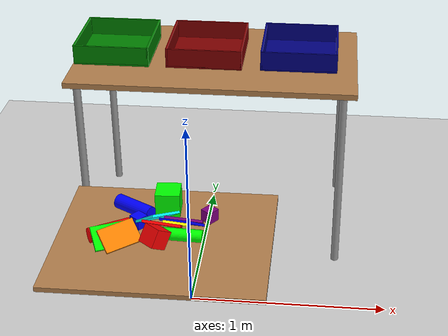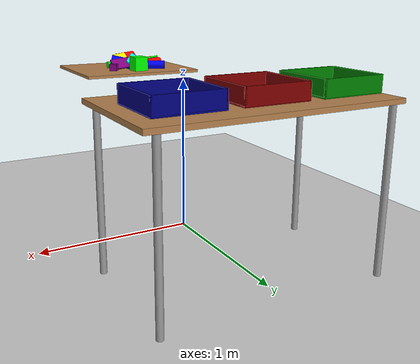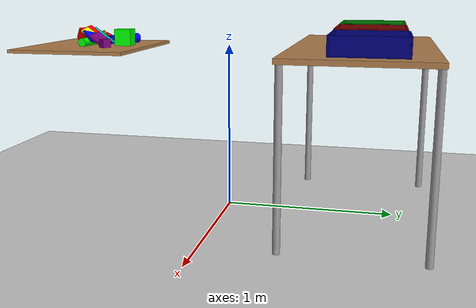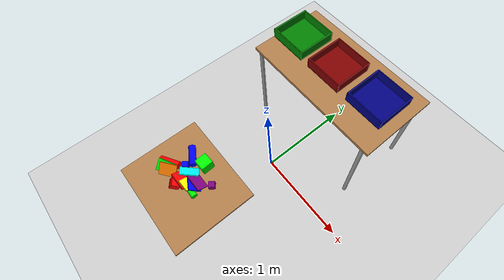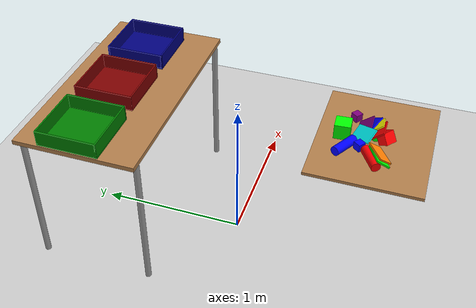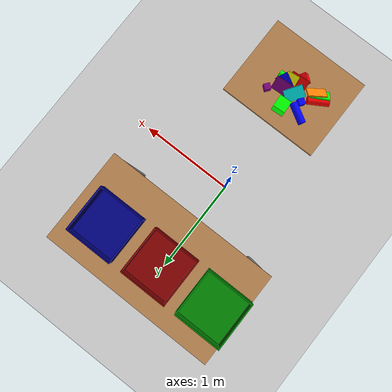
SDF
<sdf version="1.7">
 <world name="default">
  <light name="sun" type="directional">
   <pose>0 0 10 0 -0 0</pose>
   <diffuse>0.8 0.8 0.8 1</diffuse>
   <specular>0.2 0.2 0.2 1</specular>
   <attenuation>
    <range>1000</range>
    <constant>0.9</constant>
    <linear>0.01</linear>
    <quadratic>0.001</quadratic>
   </attenuation>
   <direction>-0.5 0.1 -0.9</direction>
   <spot><inner_angle>0</inner_angle><outer_angle>0</outer_angle><falloff>0</falloff></spot>
  </light>
  <model name="ground_plane">
   <static>1</static>
   <link name="link">
    <collision name="collision">
     <geometry><plane><normal>0 0 1</normal><size>100 100</size></plane></geometry>
     <surface><friction><ode><mu>100</mu><mu2>50</mu2></ode></friction></surface>
    </collision>
    <visual name="visual">
     <cast_shadows>0</cast_shadows>
     <geometry><plane><normal>0 0 1</normal><size>100 100</size></plane></geometry>
     <material>
      <script><uri>file://media/materials/scripts/gazebo.material</uri><name>Gazebo/Grey</name></script>
     </material>
    </visual>
   </link>
  </model>
  <gravity>0 0 -9.8</gravity>
  <magnetic_field>6e-06 2.3e-05 -4.2e-05</magnetic_field>
  <atmosphere type="adiabatic"/>
  <physics type="ode">
   <max_step_size>0.001</max_step_size>
   <real_time_factor>1</real_time_factor>
   <real_time_update_rate>1000</real_time_update_rate>
  </physics>
  <scene><ambient>0.4 0.4 0.4 1</ambient><background>0.7 0.7 0.7 1</background><shadows>1</shadows></scene>
  <audio><device>default</device></audio>
  <spherical_coordinates>
   <surface_model>EARTH_WGS84</surface_model>
   <latitude_deg>0</latitude_deg>
   <longitude_deg>0</longitude_deg>
   <elevation>0</elevation>
   <heading_deg>0</heading_deg>
  </spherical_coordinates>
  <model name="table">
   <static>1</static>
   <link name="link">
    <collision name="surface">
     <pose>0 0 1 0 -0 0</pose>
     <geometry><box><size>1.5 0.8 0.03</size></box></geometry>
     <surface>
      <friction><ode><mu>10</mu><mu2>5</mu2></ode></friction>
      <contact><ode><soft_cfm>0.0001</soft_cfm><soft_erp>0.4</soft_erp><kp>1e+06</kp><kd>10</kd></ode></contact>
     </surface>
    </collision>
    <visual name="visual1">
     <pose>0 0 1 0 -0 0</pose>
     <geometry><box><size>1.5 0.8 0.03</size></box></geometry>
     <material>
      <script><uri>file://media/materials/scripts/gazebo.material</uri><name>Gazebo/Wood</name></script>
     </material>
    </visual>
    <collision name="front_left_leg">
     <pose>0.68 0.38 0.5 0 -0 0</pose>
     <geometry><cylinder><radius>0.02</radius><length>1</length></cylinder></geometry>
    </collision>
    <visual name="front_left_leg">
     <pose>0.68 0.38 0.5 0 -0 0</pose>
     <geometry><cylinder><radius>0.02</radius><length>1</length></cylinder></geometry>
     <material>
      <script><uri>file://media/materials/scripts/gazebo.material</uri><name>Gazebo/Grey</name></script>
     </material>
    </visual>
    <collision name="front_right_leg">
     <pose>0.68 -0.38 0.5 0 -0 0</pose>
     <geometry><cylinder><radius>0.02</radius><length>1</length></cylinder></geometry>
    </collision>
    <visual name="front_right_leg">
     <pose>0.68 -0.38 0.5 0 -0 0</pose>
     <geometry><cylinder><radius>0.02</radius><length>1</length></cylinder></geometry>
     <material>
      <script><uri>file://media/materials/scripts/gazebo.material</uri><name>Gazebo/Grey</name></script>
     </material>
    </visual>
    <collision name="back_right_leg">
     <pose>-0.68 -0.38 0.5 0 -0 0</pose>
     <geometry><cylinder><radius>0.02</radius><length>1</length></cylinder></geometry>
    </collision>
    <visual name="back_right_leg">
     <pose>-0.68 -0.38 0.5 0 -0 0</pose>
     <geometry><cylinder><radius>0.02</radius><length>1</length></cylinder></geometry>
     <material>
      <script><uri>file://media/materials/scripts/gazebo.material</uri><name>Gazebo/Grey</name></script>
     </material>
    </visual>
    <collision name="back_left_leg">
     <pose>-0.68 0.38 0.5 0 -0 0</pose>
     <geometry><cylinder><radius>0.02</radius><length>1</length></cylinder></geometry>
    </collision>
    <visual name="back_left_leg">
     <pose>-0.68 0.38 0.5 0 -0 0</pose>
     <geometry><cylinder><radius>0.02</radius><length>1</length></cylinder></geometry>
     <material>
      <script><uri>file://media/materials/scripts/gazebo.material</uri><name>Gazebo/Grey</name></script>
     </material>
    </visual>
    <inertial>
     <inertia><ixx>1</ixx><ixy>0</ixy><ixz>0</ixz><iyy>1</iyy><iyz>0</iyz><izz>1</izz></inertia>
     <mass>50</mass>
    </inertial>
   </link>
   <pose>0.056083 0.801191 -1.2e-05 0 -0 2.5e-05</pose>
  </model>
  <plugin name="gazebo_link_attacher" filename="libgazebo_link_attacher.so"/>
  <plugin name="gazebo_ros_state" filename="libgazebo_ros_state.so">
   <namespace>/gazebo</namespace>
   <update_rate>100</update_rate>
  </plugin>
  <model name="cube_b">
   <link name="link_2">
    <inertial>
     <mass>2</mass>
     <inertia>
      <ixx>0.00083333</ixx>
      <ixy>0</ixy>
      <ixz>0</ixz>
      <iyy>0.00083333</iyy>
      <iyz>0</iyz>
      <izz>0.00083333</izz>
     </inertia>
    </inertial>
    <visual name="visual">
     <geometry><box><size>0.05 0.05 0.05</size></box></geometry>
     <material>
      <lighting>1</lighting>
      <script><uri>file://media/materials/scripts/gazebo.material</uri><name>Gazebo/Grey</name></script>
      <ambient>0 0 1 1</ambient>
      <diffuse>0 0 1 1</diffuse>
      <specular>0 0 0 1</specular>
      <emissive>0 0 0 1</emissive>
      <shader type="vertex"><normal_map>__default__</normal_map></shader>
     </material>
    </visual>
    <collision name="collision">
     <geometry><box><size>0.05 0.05 0.05</size></box></geometry>
     <surface>
      <friction>
       <ode><mu>0.8</mu><mu2>0.8</mu2><fdir1>0 0 0</fdir1><slip1>0</slip1><slip2>0</slip2></ode>
       <torsional>
        <coefficient>1</coefficient>
        <patch_radius>0</patch_radius>
        <surface_radius>0</surface_radius>
        <use_patch_radius>1</use_patch_radius>
        <ode><slip>0</slip></ode>
       </torsional>
      </friction>
      <bounce><restitution_coefficient>0</restitution_coefficient><threshold>1e+06</threshold></bounce>
      <contact>
       <collide_without_contact>0</collide_without_contact>
       <collide_without_contact_bitmask>1</collide_without_contact_bitmask>
       <collide_bitmask>1</collide_bitmask>
       <ode>
        <soft_cfm>0.0001</soft_cfm>
        <soft_erp>0.4</soft_erp>
        <kp>1e+06</kp>
        <kd>10</kd>
        <max_vel>0.01</max_vel>
        <min_depth>0</min_depth>
       </ode>
      </contact>
     </surface>
    </collision>
   </link>
   <static>0</static>
   <allow_auto_disable>0</allow_auto_disable>
   <pose>-0.072183 -0.784572 1.01036 -1.57403 0.003537 2.47932</pose>
  </model>
  <model name="cube_g">
   <link name="link_2">
    <inertial>
     <mass>2</mass>
     <inertia>
      <ixx>0.00333333</ixx>
      <iyy>0.00333333</iyy>
      <izz>0.00333333</izz>
      <ixy>0</ixy>
      <ixz>0</ixz>
      <iyz>0</iyz>
     </inertia>
    </inertial>
    <visual name="visual">
     <geometry><box><size>0.1 0.1 0.1</size></box></geometry>
     <material>
      <lighting>1</lighting>
      <script><uri>file://media/materials/scripts/gazebo.material</uri><name>Gazebo/Grey</name></script>
      <ambient>0 1 0 1</ambient>
      <diffuse>0 1 0 1</diffuse>
      <specular>0 0 0 1</specular>
      <emissive>0 0 0 1</emissive>
      <shader type="vertex"><normal_map>__default__</normal_map></shader>
     </material>
    </visual>
    <collision name="collision">
     <geometry><box><size>0.1 0.1 0.1</size></box></geometry>
     <surface>
      <friction>
       <ode><mu>0.8</mu><mu2>0.8</mu2><fdir1>0 0 0</fdir1><slip1>0</slip1><slip2>0</slip2></ode>
       <torsional>
        <coefficient>1</coefficient>
        <patch_radius>0</patch_radius>
        <surface_radius>0</surface_radius>
        <use_patch_radius>1</use_patch_radius>
        <ode><slip>0</slip></ode>
       </torsional>
      </friction>
      <bounce><restitution_coefficient>0</restitution_coefficient><threshold>1e+06</threshold></bounce>
      <contact>
       <collide_without_contact>0</collide_without_contact>
       <collide_without_contact_bitmask>1</collide_without_contact_bitmask>
       <collide_bitmask>1</collide_bitmask>
       <ode>
        <soft_cfm>0.0001</soft_cfm>
        <soft_erp>0.4</soft_erp>
        <kp>1e+06</kp>
        <kd>10</kd>
        <max_vel>0.01</max_vel>
        <min_depth>0</min_depth>
       </ode>
      </contact>
     </surface>
    </collision>
   </link>
   <static>0</static>
   <allow_auto_disable>0</allow_auto_disable>
   <pose>0.029324 -0.661435 1.03591 -2.93745 1.5665 0.263517</pose>
  </model>
  <model name="cube_r">
   <link name="link_2">
    <inertial>
     <mass>2</mass>
     <inertia>
      <ixx>0.001875</ixx>
      <ixy>0</ixy>
      <ixz>0</ixz>
      <iyy>0.001875</iyy>
      <iyz>0</iyz>
      <izz>0.001875</izz>
     </inertia>
    </inertial>
    <visual name="visual">
     <geometry><box><size>0.075 0.075 0.075</size></box></geometry>
     <material>
      <lighting>1</lighting>
      <script><uri>file://media/materials/scripts/gazebo.material</uri><name>Gazebo/Grey</name></script>
      <ambient>1 0 0 1</ambient>
      <diffuse>1 0 0 1</diffuse>
      <specular>0 0 0 1</specular>
      <emissive>0 0 0 1</emissive>
      <shader type="vertex"><normal_map>__default__</normal_map></shader>
     </material>
    </visual>
    <collision name="collision">
     <geometry><box><size>0.075 0.075 0.075</size></box></geometry>
     <surface>
      <friction>
       <ode><mu>0.8</mu><mu2>0.8</mu2><fdir1>0 0 0</fdir1><slip1>0</slip1><slip2>0</slip2></ode>
       <torsional>
        <coefficient>1</coefficient>
        <patch_radius>0</patch_radius>
        <surface_radius>0</surface_radius>
        <use_patch_radius>1</use_patch_radius>
        <ode><slip>0</slip></ode>
       </torsional>
      </friction>
      <bounce><restitution_coefficient>0</restitution_coefficient><threshold>1e+06</threshold></bounce>
      <contact>
       <collide_without_contact>0</collide_without_contact>
       <collide_without_contact_bitmask>1</collide_without_contact_bitmask>
       <collide_bitmask>1</collide_bitmask>
       <ode>
        <soft_cfm>0.0001</soft_cfm>
        <soft_erp>0.4</soft_erp>
        <kp>1e+06</kp>
        <kd>10</kd>
        <max_vel>0.01</max_vel>
        <min_depth>0</min_depth>
       </ode>
      </contact>
     </surface>
    </collision>
   </link>
   <static>0</static>
   <allow_auto_disable>0</allow_auto_disable>
   <pose>0.019017 -0.92623 1.03727 -0.004313 0.568319 0.890043</pose>
  </model>
  <model name="cylinder_r">
   <link name="link_0">
    <inertial>
     <mass>0.2</mass>
     <inertia>
      <ixx>0.0005267</ixx>
      <ixy>0</ixy>
      <ixz>0</ixz>
      <iyy>0.0005267</iyy>
      <iyz>0</iyz>
      <izz>9e-05</izz>
     </inertia>
    </inertial>
    <visual name="visual">
     <geometry><cylinder><radius>0.03</radius><length>0.17</length></cylinder></geometry>
     <material>
      <lighting>1</lighting>
      <script><uri>file://media/materials/scripts/gazebo.material</uri><name>Gazebo/Grey</name></script>
      <ambient>1 0 0 1</ambient>
      <diffuse>1 0 0 1</diffuse>
      <specular>0 0 0 1</specular>
      <emissive>0 0 0 1</emissive>
      <shader type="vertex"><normal_map>__default__</normal_map></shader>
     </material>
    </visual>
    <collision name="collision">
     <geometry><cylinder><radius>0.03</radius><length>0.17</length></cylinder></geometry>
     <surface>
      <friction>
       <ode><mu>0.5</mu><mu2>0.5</mu2><fdir1>0 0 0</fdir1><slip1>0</slip1><slip2>0</slip2></ode>
       <torsional>
        <coefficient>1</coefficient>
        <patch_radius>0</patch_radius>
        <surface_radius>0</surface_radius>
        <use_patch_radius>1</use_patch_radius>
        <ode><slip>0</slip></ode>
       </torsional>
      </friction>
      <bounce><restitution_coefficient>0</restitution_coefficient><threshold>1e+06</threshold></bounce>
      <contact>
       <collide_without_contact>0</collide_without_contact>
       <collide_without_contact_bitmask>1</collide_without_contact_bitmask>
       <collide_bitmask>1</collide_bitmask>
       <ode>
        <soft_cfm>0.0001</soft_cfm>
        <soft_erp>0.4</soft_erp>
        <kp>1e+06</kp>
        <kd>10</kd>
        <max_vel>0.01</max_vel>
        <min_depth>0</min_depth>
       </ode>
      </contact>
     </surface>
    </collision>
   </link>
   <static>0</static>
   <allow_auto_disable>0</allow_auto_disable>
   <pose>-0.171754 -0.867678 1.01484 1.57556 -0.516207 -1.03045</pose>
  </model>
  <model name="cylinder_b">
   <link name="link_0">
    <inertial>
     <mass>0.2</mass>
     <inertia>
      <ixx>0.0005267</ixx>
      <ixy>0</ixy>
      <ixz>0</ixz>
      <iyy>0.0005267</iyy>
      <iyz>0</iyz>
      <izz>9e-05</izz>
     </inertia>
    </inertial>
    <visual name="visual">
     <geometry><cylinder><radius>0.03</radius><length>0.17</length></cylinder></geometry>
     <material>
      <lighting>1</lighting>
      <ambient>0 0 1 1</ambient>
      <diffuse>0 0 1 1</diffuse>
      <specular>0.1 0.1 0.1 1</specular>
      <emissive>0 0 0 1</emissive>
      <shader type="vertex"><normal_map>__default__</normal_map></shader>
     </material>
    </visual>
    <collision name="collision">
     <geometry><cylinder><radius>0.03</radius><length>0.17</length></cylinder></geometry>
     <surface>
      <friction>
       <ode><mu>0.4</mu><mu2>0.4</mu2><fdir1>0 0 0</fdir1><slip1>0</slip1><slip2>0</slip2></ode>
       <torsional>
        <coefficient>1</coefficient>
        <patch_radius>0</patch_radius>
        <surface_radius>0</surface_radius>
        <use_patch_radius>1</use_patch_radius>
        <ode><slip>0</slip></ode>
       </torsional>
      </friction>
      <bounce><restitution_coefficient>0</restitution_coefficient><threshold>1e+06</threshold></bounce>
      <contact>
       <collide_without_contact>0</collide_without_contact>
       <collide_without_contact_bitmask>1</collide_without_contact_bitmask>
       <collide_bitmask>1</collide_bitmask>
       <ode>
        <soft_cfm>0.0001</soft_cfm>
        <soft_erp>0.4</soft_erp>
        <kp>1e+06</kp>
        <kd>10</kd>
        <max_vel>0.01</max_vel>
        <min_depth>0</min_depth>
       </ode>
      </contact>
     </surface>
    </collision>
   </link>
   <static>0</static>
   <allow_auto_disable>0</allow_auto_disable>
   <pose>-0.104074 -0.698943 1.01532 1.57499 0.764038 -2.09176</pose>
  </model>
  <model name="cylinder_g">
   <link name="link_0">
    <inertial>
     <mass>0.2</mass>
     <inertia>
      <ixx>0.0005129</ixx>
      <ixy>0</ixy>
      <ixz>0</ixz>
      <iyy>0.0005129</iyy>
      <iyz>0</iyz>
      <izz>6.25e-05</izz>
     </inertia>
    </inertial>
    <visual name="visual">
     <geometry><cylinder><radius>0.025</radius><length>0.17</length></cylinder></geometry>
     <material>
      <lighting>1</lighting>
      <ambient>0 1 0 1</ambient>
      <diffuse>0 1 0 1</diffuse>
      <specular>0.1 0.1 0.1 1</specular>
      <emissive>0 0 0 1</emissive>
      <shader type="vertex"><normal_map>__default__</normal_map></shader>
     </material>
    </visual>
    <collision name="collision">
     <geometry><cylinder><radius>0.025</radius><length>0.17</length></cylinder></geometry>
     <surface>
      <friction>
       <ode><mu>0.5</mu><mu2>0.5</mu2><fdir1>0 0 0</fdir1><slip1>0</slip1><slip2>0</slip2></ode>
       <torsional>
        <coefficient>1</coefficient>
        <patch_radius>0</patch_radius>
        <surface_radius>0</surface_radius>
        <use_patch_radius>1</use_patch_radius>
        <ode><slip>0</slip></ode>
       </torsional>
      </friction>
      <bounce><restitution_coefficient>0</restitution_coefficient><threshold>1e+06</threshold></bounce>
      <contact>
       <collide_without_contact>0</collide_without_contact>
       <collide_without_contact_bitmask>1</collide_without_contact_bitmask>
       <collide_bitmask>1</collide_bitmask>
       <ode>
        <soft_cfm>0.0001</soft_cfm>
        <soft_erp>0.4</soft_erp>
        <kp>1e+06</kp>
        <kd>10</kd>
        <max_vel>0.01</max_vel>
        <min_depth>0</min_depth>
       </ode>
      </contact>
     </surface>
    </collision>
   </link>
   <static>0</static>
   <allow_auto_disable>0</allow_auto_disable>
   <pose>0.110375 -0.867352 1.011 -1.55923 -1.19955 -1.63329</pose>
  </model>
  <model name="cuboid_r">
   <link name="link">
    <inertial>
     <mass>2</mass>
     <inertia>
      <ixx>0.001683</ixx>
      <iyy>0.003767</iyy>
      <izz>0.005417</izz>
      <ixy>0</ixy>
      <ixz>0</ixz>
      <iyz>0</iyz>
     </inertia>
    </inertial>
    <visual name="visual">
     <geometry><box><size>0.15 0.1 0.01</size></box></geometry>
     <material><ambient>1 0 0 1</ambient><diffuse>1 0 0 1</diffuse><specular>0.1 0.1 0.1 1</specular></material>
    </visual>
    <collision name="collision">
     <geometry><box><size>0.15 0.1 0.01</size></box></geometry>
     <surface>
      <friction>
       <ode><mu>0.6</mu><mu2>0.6</mu2><fdir1>0 0 0</fdir1><slip1>0</slip1><slip2>0</slip2></ode>
       <torsional>
        <coefficient>1</coefficient>
        <patch_radius>0</patch_radius>
        <surface_radius>0</surface_radius>
        <use_patch_radius>1</use_patch_radius>
        <ode><slip>0</slip></ode>
       </torsional>
      </friction>
      <bounce><restitution_coefficient>0</restitution_coefficient><threshold>1e+06</threshold></bounce>
      <contact>
       <collide_without_contact>0</collide_without_contact>
       <collide_without_contact_bitmask>1</collide_without_contact_bitmask>
       <collide_bitmask>1</collide_bitmask>
       <ode>
        <soft_cfm>0.0001</soft_cfm>
        <soft_erp>0.4</soft_erp>
        <kp>1e+06</kp>
        <kd>10</kd>
        <max_vel>0.01</max_vel>
        <min_depth>0</min_depth>
       </ode>
      </contact>
     </surface>
    </collision>
   </link>
   <static>0</static>
   <allow_auto_disable>0</allow_auto_disable>
   <pose>0.03925 -0.873665 1.0608 0.641202 -0.111187 -3.13385</pose>
  </model>
  <model name="cuboid_g">
   <link name="link">
    <inertial>
     <mass>2</mass>
     <inertia>
      <ixx>0.001683</ixx>
      <iyy>0.003767</iyy>
      <izz>0.005417</izz>
      <ixy>0</ixy>
      <ixz>0</ixz>
      <iyz>0</iyz>
     </inertia>
    </inertial>
    <visual name="visual">
     <geometry><box><size>0.15 0.1 0.01</size></box></geometry>
     <material><ambient>0 1 0 1</ambient><diffuse>0 1 0 1</diffuse><specular>0.1 0.1 0.1 1</specular></material>
    </visual>
    <collision name="collision">
     <geometry><box><size>0.15 0.1 0.01</size></box></geometry>
     <surface>
      <friction>
       <ode><mu>0.6</mu><mu2>0.6</mu2><fdir1>0 0 0</fdir1><slip1>0</slip1><slip2>0</slip2></ode>
       <torsional>
        <coefficient>1</coefficient>
        <patch_radius>0</patch_radius>
        <surface_radius>0</surface_radius>
        <use_patch_radius>1</use_patch_radius>
        <ode><slip>0</slip></ode>
       </torsional>
      </friction>
      <bounce><restitution_coefficient>0</restitution_coefficient><threshold>1e+06</threshold></bounce>
      <contact>
       <collide_without_contact>0</collide_without_contact>
       <collide_without_contact_bitmask>1</collide_without_contact_bitmask>
       <collide_bitmask>1</collide_bitmask>
       <ode>
        <soft_cfm>0.0001</soft_cfm>
        <soft_erp>0.4</soft_erp>
        <kp>1e+06</kp>
        <kd>10</kd>
        <max_vel>0.01</max_vel>
        <min_depth>0</min_depth>
       </ode>
      </contact>
     </surface>
    </collision>
   </link>
   <static>0</static>
   <allow_auto_disable>0</allow_auto_disable>
   <pose>-0.154063 -0.914801 1.02169 -2.50509 0.036951 0.487499</pose>
  </model>
  <model name="cuboid_b">
   <link name="link">
    <inertial>
     <mass>2</mass>
     <inertia>
      <ixx>0.001683</ixx>
      <iyy>0.003767</iyy>
      <izz>0.005417</izz>
      <ixy>0</ixy>
      <ixz>0</ixz>
      <iyz>0</iyz>
     </inertia>
    </inertial>
    <visual name="visual">
     <geometry><box><size>0.15 0.1 0.01</size></box></geometry>
     <material><ambient>0 0 1 1</ambient><diffuse>0 0 1 1</diffuse><specular>0.1 0.1 0.1 1</specular></material>
    </visual>
    <collision name="collision">
     <geometry><box><size>0.15 0.1 0.01</size></box></geometry>
     <surface>
      <friction>
       <ode><mu>0.6</mu><mu2>0.6</mu2><fdir1>0 0 0</fdir1><slip1>0</slip1><slip2>0</slip2></ode>
       <torsional>
        <coefficient>1</coefficient>
        <patch_radius>0</patch_radius>
        <surface_radius>0</surface_radius>
        <use_patch_radius>1</use_patch_radius>
        <ode><slip>0</slip></ode>
       </torsional>
      </friction>
      <bounce><restitution_coefficient>0</restitution_coefficient><threshold>1e+06</threshold></bounce>
      <contact>
       <collide_without_contact>0</collide_without_contact>
       <collide_without_contact_bitmask>1</collide_without_contact_bitmask>
       <collide_bitmask>1</collide_bitmask>
       <ode>
        <soft_cfm>0.0001</soft_cfm>
        <soft_erp>0.4</soft_erp>
        <kp>1e+06</kp>
        <kd>10</kd>
        <max_vel>0.01</max_vel>
        <min_depth>0</min_depth>
       </ode>
      </contact>
     </surface>
    </collision>
   </link>
   <static>0</static>
   <allow_auto_disable>0</allow_auto_disable>
   <pose>0.106216 -0.815077 1.03442 0.616599 0.218701 2.70549</pose>
  </model>
  <model name="cuboid_purple">
   <link name="link">
    <inertial>
     <mass>2</mass>
     <inertia>
      <ixx>0.001683</ixx>
      <iyy>0.003767</iyy>
      <izz>0.005417</izz>
      <ixy>0</ixy>
      <ixz>0</ixz>
      <iyz>0</iyz>
     </inertia>
    </inertial>
    <visual name="visual">
     <geometry><box><size>0.15 0.1 0.01</size></box></geometry>
     <material>
      <ambient>0.5 0 0.5 1</ambient>
      <diffuse>0.5 0 0.5 1</diffuse>
      <specular>0.1 0.1 0.1 1</specular>
     </material>
    </visual>
    <collision name="collision">
     <geometry><box><size>0.15 0.1 0.01</size></box></geometry>
     <surface>
      <friction>
       <ode><mu>0.6</mu><mu2>0.6</mu2><fdir1>0 0 0</fdir1><slip1>0</slip1><slip2>0</slip2></ode>
       <torsional>
        <coefficient>1</coefficient>
        <patch_radius>0</patch_radius>
        <surface_radius>0</surface_radius>
        <use_patch_radius>1</use_patch_radius>
        <ode><slip>0</slip></ode>
       </torsional>
      </friction>
      <bounce><restitution_coefficient>0</restitution_coefficient><threshold>1e+06</threshold></bounce>
      <contact>
       <collide_without_contact>0</collide_without_contact>
       <collide_without_contact_bitmask>1</collide_without_contact_bitmask>
       <collide_bitmask>1</collide_bitmask>
       <ode>
        <soft_cfm>0.0001</soft_cfm>
        <soft_erp>0.4</soft_erp>
        <kp>1e+06</kp>
        <kd>10</kd>
        <max_vel>0.01</max_vel>
        <min_depth>0</min_depth>
       </ode>
      </contact>
     </surface>
    </collision>
   </link>
   <static>0</static>
   <allow_auto_disable>0</allow_auto_disable>
   <pose>0.111272 -0.788103 1.02756 0.639957 -0.099359 -3.12261</pose>
  </model>
  <model name="cuboid_orange">
   <link name="link">
    <inertial>
     <mass>2</mass>
     <inertia>
      <ixx>0.001683</ixx>
      <iyy>0.003767</iyy>
      <izz>0.005417</izz>
      <ixy>0</ixy>
      <ixz>0</ixz>
      <iyz>0</iyz>
     </inertia>
    </inertial>
    <visual name="visual">
     <geometry><box><size>0.15 0.1 0.01</size></box></geometry>
     <material>
      <ambient>1 0.5 0 1</ambient>
      <diffuse>1 0.5 0 1</diffuse>
      <specular>0.1 0.1 0.1 1</specular>
     </material>
    </visual>
    <collision name="collision">
     <geometry><box><size>0.15 0.1 0.01</size></box></geometry>
     <surface>
      <friction>
       <ode><mu>0.6</mu><mu2>0.6</mu2><fdir1>0 0 0</fdir1><slip1>0</slip1><slip2>0</slip2></ode>
       <torsional>
        <coefficient>1</coefficient>
        <patch_radius>0</patch_radius>
        <surface_radius>0</surface_radius>
        <use_patch_radius>1</use_patch_radius>
        <ode><slip>0</slip></ode>
       </torsional>
      </friction>
      <bounce><restitution_coefficient>0</restitution_coefficient><threshold>1e+06</threshold></bounce>
      <contact>
       <collide_without_contact>0</collide_without_contact>
       <collide_without_contact_bitmask>1</collide_without_contact_bitmask>
       <collide_bitmask>1</collide_bitmask>
       <ode>
        <soft_cfm>0.0001</soft_cfm>
        <soft_erp>0.4</soft_erp>
        <kp>1e+06</kp>
        <kd>10</kd>
        <max_vel>0.01</max_vel>
        <min_depth>0</min_depth>
       </ode>
      </contact>
     </surface>
    </collision>
   </link>
   <static>0</static>
   <allow_auto_disable>0</allow_auto_disable>
   <pose>-0.122471 -0.913708 1.02297 2.50678 0.061456 -2.51697</pose>
  </model>
  <model name="cuboid_yellow">
   <link name="link">
    <inertial>
     <mass>2</mass>
     <inertia>
      <ixx>0.001683</ixx>
      <iyy>0.003767</iyy>
      <izz>0.005417</izz>
      <ixy>0</ixy>
      <ixz>0</ixz>
      <iyz>0</iyz>
     </inertia>
    </inertial>
    <visual name="visual">
     <geometry><box><size>0.15 0.1 0.01</size></box></geometry>
     <material><ambient>1 1 0 1</ambient><diffuse>1 1 0 1</diffuse><specular>0.1 0.1 0.1 1</specular></material>
    </visual>
    <collision name="collision">
     <geometry><box><size>0.15 0.1 0.01</size></box></geometry>
     <surface>
      <friction>
       <ode><mu>0.6</mu><mu2>0.6</mu2><fdir1>0 0 0</fdir1><slip1>0</slip1><slip2>0</slip2></ode>
       <torsional>
        <coefficient>1</coefficient>
        <patch_radius>0</patch_radius>
        <surface_radius>0</surface_radius>
        <use_patch_radius>1</use_patch_radius>
        <ode><slip>0</slip></ode>
       </torsional>
      </friction>
      <bounce><restitution_coefficient>0</restitution_coefficient><threshold>1e+06</threshold></bounce>
      <contact>
       <collide_without_contact>0</collide_without_contact>
       <collide_without_contact_bitmask>1</collide_without_contact_bitmask>
       <collide_bitmask>1</collide_bitmask>
       <ode>
        <soft_cfm>0.0001</soft_cfm>
        <soft_erp>0.4</soft_erp>
        <kp>1e+06</kp>
        <kd>10</kd>
        <max_vel>0.01</max_vel>
        <min_depth>0</min_depth>
       </ode>
      </contact>
     </surface>
    </collision>
   </link>
   <static>0</static>
   <allow_auto_disable>0</allow_auto_disable>
   <pose>0.087596 -0.83792 1.04116 0.1673 0.631662 1.71022</pose>
  </model>
  <model name="cuboid_cyan">
   <link name="link">
    <inertial>
     <mass>2</mass>
     <inertia>
      <ixx>0.001683</ixx>
      <iyy>0.003767</iyy>
      <izz>0.005417</izz>
      <ixy>0</ixy>
      <ixz>0</ixz>
      <iyz>0</iyz>
     </inertia>
    </inertial>
    <visual name="visual">
     <geometry><box><size>0.15 0.1 0.01</size></box></geometry>
     <material><ambient>0 1 1 1</ambient><diffuse>0 1 1 1</diffuse><specular>0.1 0.1 0.1 1</specular></material>
    </visual>
    <collision name="collision">
     <geometry><box><size>0.15 0.1 0.01</size></box></geometry>
     <surface>
      <friction>
       <ode><mu>0.6</mu><mu2>0.6</mu2><fdir1>0 0 0</fdir1><slip1>0</slip1><slip2>0</slip2></ode>
       <torsional>
        <coefficient>1</coefficient>
        <patch_radius>0</patch_radius>
        <surface_radius>0</surface_radius>
        <use_patch_radius>1</use_patch_radius>
        <ode><slip>0</slip></ode>
       </torsional>
      </friction>
      <bounce><restitution_coefficient>0</restitution_coefficient><threshold>1e+06</threshold></bounce>
      <contact>
       <collide_without_contact>0</collide_without_contact>
       <collide_without_contact_bitmask>1</collide_without_contact_bitmask>
       <collide_bitmask>1</collide_bitmask>
       <ode>
        <soft_cfm>0.0001</soft_cfm>
        <soft_erp>0.4</soft_erp>
        <kp>1e+06</kp>
        <kd>10</kd>
        <max_vel>0.01</max_vel>
        <min_depth>0</min_depth>
       </ode>
      </contact>
     </surface>
    </collision>
   </link>
   <static>0</static>
   <allow_auto_disable>0</allow_auto_disable>
   <pose>0.007605 -0.794484 1.04031 -0.600706 0.323253 0.907236</pose>
  </model>
  <model name="workspace">
   <link name="link">
    <inertial>
     <mass>100</mass>
     <inertia><ixx>6.02417</ixx><ixy>0</ixy><ixz>0</ixz><iyy>4.08667</iyy><iyz>0</iyz><izz>10.1042</izz></inertia>
    </inertial>
    <visual name="visual">
     <geometry><box><size>0.7 0.85 0.02</size></box></geometry>
     <material>
      <script><name>Gazebo/Wood</name><uri>file://media/materials/scripts/gazebo.material</uri></script>
      <shader type="pixel"/>
     </material>
    </visual>
    <collision name="collision">
     <geometry><box><size>0.7 0.85 0.02</size></box></geometry>
     <surface>
      <friction>
       <ode><mu>100</mu><mu2>50</mu2><fdir1>0 0 0</fdir1><slip1>0</slip1><slip2>0</slip2></ode>
       <torsional>
        <coefficient>1</coefficient>
        <patch_radius>0</patch_radius>
        <surface_radius>0</surface_radius>
        <use_patch_radius>1</use_patch_radius>
        <ode><slip>0</slip></ode>
       </torsional>
      </friction>
      <bounce><restitution_coefficient>0</restitution_coefficient><threshold>1e+06</threshold></bounce>
      <contact>
       <collide_without_contact>0</collide_without_contact>
       <collide_without_contact_bitmask>1</collide_without_contact_bitmask>
       <collide_bitmask>1</collide_bitmask>
       <ode>
        <soft_cfm>0.0001</soft_cfm>
        <soft_erp>0.2</soft_erp>
        <kp>1e+13</kp>
        <kd>10</kd>
        <max_vel>0.01</max_vel>
        <min_depth>0</min_depth>
       </ode>
       <bullet>
        <split_impulse>1</split_impulse>
        <split_impulse_penetration_threshold>-0.01</split_impulse_penetration_threshold>
        <soft_cfm>0</soft_cfm>
        <soft_erp>0.2</soft_erp>
        <kp>1e+13</kp>
        <kd>1</kd>
       </bullet>
      </contact>
     </surface>
    </collision>
   </link>
   <static>1</static>
   <pose>0.0416 -0.859914 0.975746 -0.004154 -0.001127 1.57039</pose>
  </model>
  <model name="tray_red">
   <static>1</static>
   <link name="link">
    <collision name="base_collision">
     <pose>0 0 0.01 0 -0 0</pose>
     <geometry><box><size>0.4 0.4 0.01</size></box></geometry>
     <surface><contact><ode><mu>50</mu><mu2>50</mu2></ode></contact></surface>
    </collision>
    <visual name="base_visual">
     <pose>0 0 0.01 0 -0 0</pose>
     <geometry><box><size>0.4 0.4 0.01</size></box></geometry>
     <material>
      <ambient>1 0 0 1</ambient>
      <diffuse>0.5 0 0 1</diffuse>
      <specular>0 0 0 1</specular>
      <emissive>0 0 0 1</emissive>
      <shininess>100</shininess>
     </material>
    </visual>
    <collision name="front_collision">
     <pose>0 0.195 0.06 0 -0 0</pose>
     <geometry><box><size>0.4 0.01 0.1</size></box></geometry>
    </collision>
    <visual name="front_visual">
     <pose>0 0.195 0.06 0 -0 0</pose>
     <geometry><box><size>0.4 0.01 0.1</size></box></geometry>
     <material>
      <ambient>1 0 0 1</ambient>
      <diffuse>0.5 0 0 1</diffuse>
      <specular>0 0 0 1</specular>
      <emissive>0 0 0 1</emissive>
     </material>
    </visual>
    <collision name="back_collision">
     <pose>0 -0.195 0.06 0 -0 0</pose>
     <geometry><box><size>0.4 0.01 0.1</size></box></geometry>
    </collision>
    <visual name="back_visual">
     <pose>0 -0.195 0.06 0 -0 0</pose>
     <geometry><box><size>0.4 0.01 0.1</size></box></geometry>
     <material>
      <ambient>1 0 0 1</ambient>
      <diffuse>0.5 0 0 1</diffuse>
      <specular>0 0 0 1</specular>
      <emissive>0 0 0 1</emissive>
     </material>
    </visual>
    <collision name="left_collision">
     <pose>0.195 0 0.06 0 -0 0</pose>
     <geometry><box><size>0.01 0.4 0.1</size></box></geometry>
    </collision>
    <visual name="left_visual">
     <pose>0.195 0 0.06 0 -0 0</pose>
     <geometry><box><size>0.01 0.4 0.1</size></box></geometry>
     <material>
      <ambient>1 0 0 1</ambient>
      <diffuse>0.5 0 0 1</diffuse>
      <specular>0 0 0 1</specular>
      <emissive>0 0 0 1</emissive>
     </material>
    </visual>
    <collision name="right_collision">
     <pose>-0.195 0 0.06 0 -0 0</pose>
     <geometry><box><size>0.01 0.4 0.1</size></box></geometry>
    </collision>
    <visual name="right_visual">
     <pose>-0.195 0 0.06 0 -0 0</pose>
     <geometry><box><size>0.01 0.4 0.1</size></box></geometry>
     <material>
      <ambient>1 0 0 1</ambient>
      <diffuse>0.5 0 0 1</diffuse>
      <specular>0 0 0 1</specular>
      <emissive>0 0 0 1</emissive>
     </material>
    </visual>
    <inertial>
     <inertia><ixx>1</ixx><ixy>0</ixy><ixz>0</ixz><iyy>1</iyy><iyz>0</iyz><izz>1</izz></inertia>
     <mass>1</mass>
    </inertial>
   </link>
   <pose>0.003367 0.836815 1.00999 0 -0 0</pose>
  </model>
  <model name="tray_green">
   <static>1</static>
   <link name="link">
    <collision name="base_collision">
     <pose>0 0 0.01 0 -0 0</pose>
     <geometry><box><size>0.4 0.4 0.01</size></box></geometry>
     <surface><contact><ode><mu>50</mu><mu2>50</mu2></ode></contact></surface>
    </collision>
    <visual name="base_visual">
     <pose>0 0 0.01 0 -0 0</pose>
     <geometry><box><size>0.4 0.4 0.01</size></box></geometry>
     <material><ambient>0 1 0 1</ambient><diffuse>0 0.5 0 1</diffuse></material>
    </visual>
    <collision name="front_collision">
     <pose>0 0.195 0.06 0 -0 0</pose>
     <geometry><box><size>0.4 0.01 0.1</size></box></geometry>
    </collision>
    <visual name="front_visual">
     <pose>0 0.195 0.06 0 -0 0</pose>
     <geometry><box><size>0.4 0.01 0.1</size></box></geometry>
     <material><ambient>0 1 0 1</ambient><diffuse>0 0.5 0 1</diffuse></material>
    </visual>
    <collision name="back_collision">
     <pose>0 -0.195 0.06 0 -0 0</pose>
     <geometry><box><size>0.4 0.01 0.1</size></box></geometry>
    </collision>
    <visual name="back_visual">
     <pose>0 -0.195 0.06 0 -0 0</pose>
     <geometry><box><size>0.4 0.01 0.1</size></box></geometry>
     <material><ambient>0 1 0 1</ambient><diffuse>0 0.5 0 1</diffuse></material>
    </visual>
    <collision name="left_collision">
     <pose>0.195 0 0.06 0 -0 0</pose>
     <geometry><box><size>0.01 0.4 0.1</size></box></geometry>
    </collision>
    <visual name="left_visual">
     <pose>0.195 0 0.06 0 -0 0</pose>
     <geometry><box><size>0.01 0.4 0.1</size></box></geometry>
     <material><ambient>0 1 0 1</ambient><diffuse>0 0.5 0 1</diffuse></material>
    </visual>
    <collision name="right_collision">
     <pose>-0.195 0 0.06 0 -0 0</pose>
     <geometry><box><size>0.01 0.4 0.1</size></box></geometry>
    </collision>
    <visual name="right_visual">
     <pose>-0.195 0 0.06 0 -0 0</pose>
     <geometry><box><size>0.01 0.4 0.1</size></box></geometry>
     <material><ambient>0 1 0 1</ambient><diffuse>0 0.5 0 1</diffuse></material>
    </visual>
    <inertial>
     <inertia><ixx>1</ixx><ixy>0</ixy><ixz>0</ixz><iyy>1</iyy><iyz>0</iyz><izz>1</izz></inertia>
     <mass>1</mass>
    </inertial>
   </link>
   <pose>-0.487214 0.834657 1.00999 0 -0 0</pose>
  </model>
  <model name="tray_blue">
   <static>1</static>
   <link name="link">
    <collision name="base_collision">
     <pose>0 0 0.01 0 -0 0</pose>
     <geometry><box><size>0.4 0.4 0.01</size></box></geometry>
     <surface><contact><ode><mu>50</mu><mu2>50</mu2></ode></contact></surface>
    </collision>
    <visual name="base_visual">
     <pose>0 0 0.01 0 -0 0</pose>
     <geometry><box><size>0.4 0.4 0.01</size></box></geometry>
     <material><ambient>0 0 1 1</ambient><diffuse>0 0 0.5 1</diffuse></material>
    </visual>
    <collision name="front_collision">
     <pose>0 0.195 0.06 0 -0 0</pose>
     <geometry><box><size>0.4 0.01 0.1</size></box></geometry>
    </collision>
    <visual name="front_visual">
     <pose>0 0.195 0.06 0 -0 0</pose>
     <geometry><box><size>0.4 0.01 0.1</size></box></geometry>
     <material><ambient>0 0 1 1</ambient><diffuse>0 0 0.5 1</diffuse></material>
    </visual>
    <collision name="back_collision">
     <pose>0 -0.195 0.06 0 -0 0</pose>
     <geometry><box><size>0.4 0.01 0.1</size></box></geometry>
    </collision>
    <visual name="back_visual">
     <pose>0 -0.195 0.06 0 -0 0</pose>
     <geometry><box><size>0.4 0.01 0.1</size></box></geometry>
     <material><ambient>0 0 1 1</ambient><diffuse>0 0 0.5 1</diffuse></material>
    </visual>
    <collision name="left_collision">
     <pose>0.195 0 0.06 0 -0 0</pose>
     <geometry><box><size>0.01 0.4 0.1</size></box></geometry>
    </collision>
    <visual name="left_visual">
     <pose>0.195 0 0.06 0 -0 0</pose>
     <geometry><box><size>0.01 0.4 0.1</size></box></geometry>
     <material><ambient>0 0 1 1</ambient><diffuse>0 0 0.5 1</diffuse></material>
    </visual>
    <collision name="right_collision">
     <pose>-0.195 0 0.06 0 -0 0</pose>
     <geometry><box><size>0.01 0.4 0.1</size></box></geometry>
    </collision>
    <visual name="right_visual">
     <pose>-0.195 0 0.06 0 -0 0</pose>
     <geometry><box><size>0.01 0.4 0.1</size></box></geometry>
     <material><ambient>0 0 1 1</ambient><diffuse>0 0 0.5 1</diffuse></material>
    </visual>
    <inertial>
     <inertia><ixx>1</ixx><ixy>0</ixy><ixz>0</ixz><iyy>1</iyy><iyz>0</iyz><izz>1</izz></inertia>
     <mass>1</mass>
    </inertial>
   </link>
   <pose>0.500589 0.844197 1.00999 0 -0 0</pose>
  </model>
  <model name="cube_purple">
   <link name="link_2">
    <inertial>
     <mass>2</mass>
     <inertia>
      <ixx>0.00083333</ixx>
      <ixy>0</ixy>
      <ixz>0</ixz>
      <iyy>0.00083333</iyy>
      <iyz>0</iyz>
      <izz>0.00083333</izz>
     </inertia>
    </inertial>
    <visual name="visual">
     <geometry><box><size>0.05 0.05 0.05</size></box></geometry>
     <material>
      <lighting>1</lighting>
      <script><uri>file://media/materials/scripts/gazebo.material</uri><name>Gazebo/Grey</name></script>
      <ambient>0.5 0 0.5 1</ambient>
      <diffuse>0.5 0 0.5 1</diffuse>
      <specular>0.1 0.1 0.1 1</specular>
      <emissive>0 0 0 1</emissive>
      <shader type="vertex"><normal_map>__default__</normal_map></shader>
     </material>
    </visual>
    <collision name="collision">
     <geometry><box><size>0.05 0.05 0.05</size></box></geometry>
     <surface>
      <friction>
       <ode><mu>0.8</mu><mu2>0.8</mu2><fdir1>0 0 0</fdir1><slip1>0</slip1><slip2>0</slip2></ode>
       <torsional>
        <coefficient>1</coefficient>
        <patch_radius>0</patch_radius>
        <surface_radius>0</surface_radius>
        <use_patch_radius>1</use_patch_radius>
        <ode><slip>0</slip></ode>
       </torsional>
      </friction>
      <bounce><restitution_coefficient>0</restitution_coefficient><threshold>1e+06</threshold></bounce>
      <contact>
       <collide_without_contact>0</collide_without_contact>
       <collide_without_contact_bitmask>1</collide_without_contact_bitmask>
       <collide_bitmask>1</collide_bitmask>
       <ode>
        <soft_cfm>0.0001</soft_cfm>
        <soft_erp>0.4</soft_erp>
        <kp>1e+06</kp>
        <kd>10</kd>
        <max_vel>0.01</max_vel>
        <min_depth>0</min_depth>
       </ode>
      </contact>
     </surface>
    </collision>
   </link>
   <static>0</static>
   <allow_auto_disable>0</allow_auto_disable>
   <pose>0.204618 -0.717485 1.01158 3.13815 0.002591 2.48124</pose>
  </model>
 </world>
</sdf>
